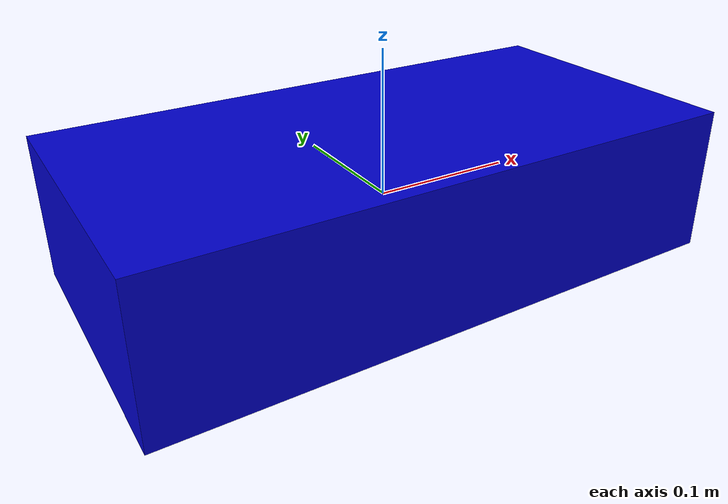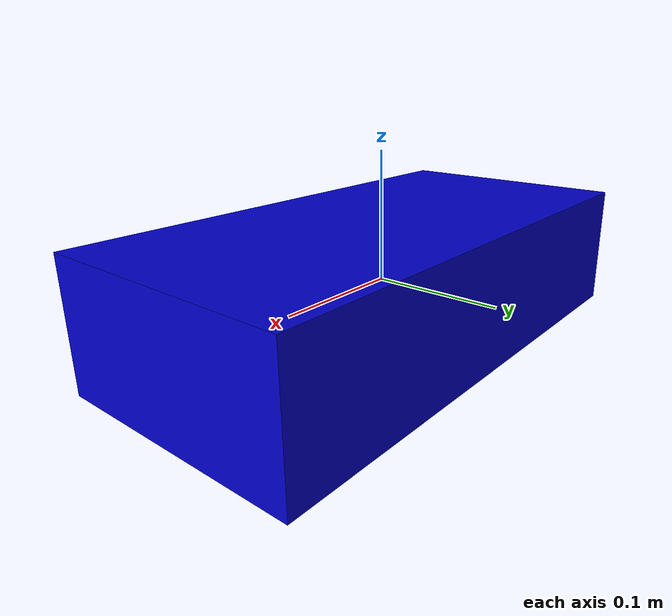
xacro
<?xml version="1.0"?>
<robot name="four_wheel_bot" xmlns:xacro="http://www.ros.org/wiki/xacro">

  <!-- 定义机器人参数 -->
  <xacro:property name="M_PI" value="3.1415926535897931" />

  <!-- 车身参数 -->
  <xacro:property name="chassis_length" value="0.4" />
  <xacro:property name="chassis_width" value="0.2" />
  <xacro:property name="chassis_height" value="0.1" />
  <xacro:property name="chassis_mass" value="2.0" />

  <!-- 轮子参数 -->
  <xacro:property name="wheel_radius" value="0.05" />
  <xacro:property name="wheel_width" value="0.02" />
  <xacro:property name="wheel_mass" value="0.5" />

  <!-- 轮子位置参数 -->
  <xacro:property name="wheelbase" value="0.3" />  <!-- 前后轮距 -->
  <xacro:property name="track_width" value="0.15" /> <!-- 左右轮距 -->

  <!-- 材料定义 -->
  <material name="blue">
    <color rgba="0 0 0.8 1"/>
  </material>
  <material name="black">
    <color rgba="0 0 0 1"/>
  </material>

  <!-- 车身连杆 -->
  <link name="chassis">
    <visual>
      <geometry>
        <box size="${chassis_length} ${chassis_width} ${chassis_height}"/>
      </geometry>
      <material name="blue"/>
    </visual>
    <collision>
      <geometry>
        <box size="${chassis_length} ${chassis_width} ${chassis_height}"/>
      </geometry>
    </collision>
    <inertial>
      <mass value="${chassis_mass}"/>
      <inertia ixx="0.1" ixy="0.0" ixz="0.0" iyy="0.1" iyz="0.0" izz="0.1"/>
    </inertial>
  </link>

  <!-- 轮子宏定义 -->
  <xacro:macro name="wheel" params="prefix x y z">
    <link name="${prefix}_wheel">
      <visual>
        <geometry>
          <cylinder radius="${wheel_radius}" length="${wheel_width}"/>
        </geometry>
        <material name="black"/>
        <origin xyz="0 0 0" rpy="${M_PI/2} 0 0"/>
      </visual>
      <collision>
        <geometry>
          <cylinder radius="${wheel_radius}" length="${wheel_width}"/>
        </geometry>
        <origin xyz="0 0 0" rpy="${M_PI/2} 0 0"/>
      </collision>
      <inertial>
        <mass value="${wheel_mass}"/>
        <inertia ixx="0.001" ixy="0.0" ixz="0.0" iyy="0.001" iyz="0.0" izz="0.001"/>
      </inertial>
    </link>

    <joint name="${prefix}_wheel_joint" type="continuous">
      <parent link="chassis"/>
      <child link="${prefix}_wheel"/>
      <origin xyz="${x} ${y} ${z}" rpy="0 0 0"/>
      <axis xyz="0 1 0"/>
    </joint>

    <!-- Gazebo轮子插件 -->
    <gazebo reference="${prefix}_wheel">
      <mu1 value="1.0"/>
      <mu2 value="1.0"/>
      <kp value="10000000.0" />
      <kd value="1.0" />
      <fdir1 value="1 0 0"/>
    </gazebo>

    <!-- 传输 -->
    <transmission name="${prefix}_wheel_trans">
      <type>transmission_interface/SimpleTransmission</type>
      <joint name="${prefix}_wheel_joint">
        <hardwareInterface>hardware_interface/VelocityJointInterface</hardwareInterface>
      </joint>
      <actuator name="${prefix}_wheel_motor">
        <hardwareInterface>hardware_interface/VelocityJointInterface</hardwareInterface>
        <mechanicalReduction>1</mechanicalReduction>
      </actuator>
    </transmission>
  </xacro:macro>

  <!-- 创建四个轮子 -->
  <xacro:wheel prefix="front_left"
               x="${wheelbase/2}" y="${track_width/2}" z="0"/>
  <xacro:wheel prefix="front_right"
               x="${wheelbase/2}" y="${-track_width/2}" z="0"/>
  <xacro:wheel prefix="back_left"
               x="${-wheelbase/2}" y="${track_width/2}" z="0"/>
  <xacro:wheel prefix="back_right"
               x="${-wheelbase/2}" y="${-track_width/2}" z="0"/>

  <!-- Gazebo插件 -->
  <gazebo>
    <plugin name="gazebo_ros_control" filename="libgazebo_ros_control.so">
      <robotNamespace>/four_wheel_bot</robotNamespace>
    </plugin>
  </gazebo>

  <!-- 差分驱动插件 -->
  <gazebo>
    <plugin name="differential_drive_controller" filename="libgazebo_ros_diff_drive.so">
      <robotNamespace>/four_wheel_bot</robotNamespace>
      <commandTopic>cmd_vel</commandTopic>
      <odometryTopic>odom</odometryTopic>
      <odometryFrame>odom</odometryFrame>
      <robotBaseFrame>chassis</robotBaseFrame>
      <publishOdometry>true</publishOdometry>
      <publishWheelTF>true</publishWheelTF>
      <publishOdomTF>true</publishOdomTF>
      <legacyMode>false</legacyMode>

      <!-- 轮子关节配置 -->
      <leftJoint>front_left_wheel_joint</leftJoint>
      <leftJoint>back_left_wheel_joint</leftJoint>
      <rightJoint>front_right_wheel_joint</rightJoint>
      <rightJoint>back_right_wheel_joint</rightJoint>

      <!-- 轮子尺寸和间距 -->
      <wheelSeparation>${track_width}</wheelSeparation>
      <wheelDiameter>${2*wheel_radius}</wheelDiameter>

      <!-- 控制参数 -->
      <torque>10</torque>
      <updateRate>30</updateRate>
    </plugin>
  </gazebo>

</robot>
